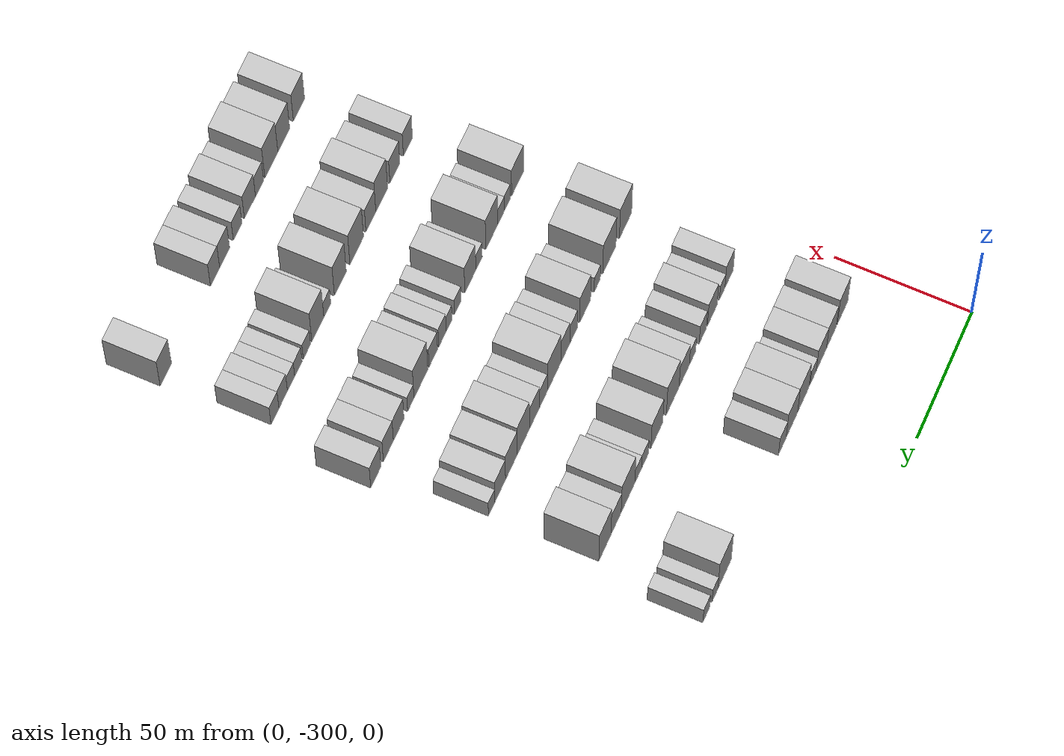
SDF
<sdf version="1.6">
 <world name="default">
  <model name="building_38">
   <static>1</static>
   <pose>50.0000 -282.1680 0 0.000000 0.000000 0.000000</pose>
   <link name="link">
    <pose>0 0 10.50 0 0 0</pose>
    <collision name="collision"><geometry><box><size>20.0000 9.3631 21.0000</size></box></geometry></collision>
    <visual name="visual">
     <cast_shadows>0</cast_shadows>
     <geometry><box><size>20.0000 9.3631 21.0000</size></box></geometry>
     <material>
      <script>
       <uri>model://HANNAS_wall/materials/scripts</uri>
       <uri>model://HANNAS_wall/materials/textures</uri>
       <name>vrc/HANNAS_wall</name>
      </script>
     </material>
    </visual>
   </link>
  </model>
  <model name="building_39">
   <static>1</static>
   <pose>50.0000 -272.1899 0 0.000000 0.000000 0.000000</pose>
   <link name="link">
    <pose>0 0 9.00 0 0 0</pose>
    <collision name="collision"><geometry><box><size>20.0000 8.5930 18.0000</size></box></geometry></collision>
    <visual name="visual">
     <cast_shadows>0</cast_shadows>
     <geometry><box><size>20.0000 8.5930 18.0000</size></box></geometry>
     <material>
      <script>
       <uri>model://HANNAS_wall/materials/scripts</uri>
       <uri>model://HANNAS_wall/materials/textures</uri>
       <name>vrc/HANNAS_wall</name>
      </script>
     </material>
    </visual>
   </link>
  </model>
  <model name="building_40">
   <static>1</static>
   <pose>50.0000 -263.4013 0 0.000000 0.000000 0.000000</pose>
   <link name="link">
    <pose>0 0 9.00 0 0 0</pose>
    <collision name="collision"><geometry><box><size>20.0000 8.9842 18.0000</size></box></geometry></collision>
    <visual name="visual">
     <cast_shadows>0</cast_shadows>
     <geometry><box><size>20.0000 8.9842 18.0000</size></box></geometry>
     <material>
      <script>
       <uri>model://HANNAS_wall/materials/scripts</uri>
       <uri>model://HANNAS_wall/materials/textures</uri>
       <name>vrc/HANNAS_wall</name>
      </script>
     </material>
    </visual>
   </link>
  </model>
  <model name="building_41">
   <static>1</static>
   <pose>50.0000 -256.2182 0 0.000000 0.000000 0.000000</pose>
   <link name="link">
    <pose>0 0 6.00 0 0 0</pose>
    <collision name="collision"><geometry><box><size>20.0000 5.3820 12.0000</size></box></geometry></collision>
    <visual name="visual">
     <cast_shadows>0</cast_shadows>
     <geometry><box><size>20.0000 5.3820 12.0000</size></box></geometry>
     <material>
      <script>
       <uri>model://HANNAS_wall/materials/scripts</uri>
       <uri>model://HANNAS_wall/materials/textures</uri>
       <name>vrc/HANNAS_wall</name>
      </script>
     </material>
    </visual>
   </link>
  </model>
  <model name="building_42">
   <static>1</static>
   <pose>50.0000 -247.5340 0 0.000000 0.000000 0.000000</pose>
   <link name="link">
    <pose>0 0 10.50 0 0 0</pose>
    <collision name="collision"><geometry><box><size>20.0000 9.9864 21.0000</size></box></geometry></collision>
    <visual name="visual">
     <cast_shadows>0</cast_shadows>
     <geometry><box><size>20.0000 9.9864 21.0000</size></box></geometry>
     <material>
      <script>
       <uri>model://HANNAS_wall/materials/scripts</uri>
       <uri>model://HANNAS_wall/materials/textures</uri>
       <name>vrc/HANNAS_wall</name>
      </script>
     </material>
    </visual>
   </link>
  </model>
  <model name="building_43">
   <static>1</static>
   <pose>50.0000 -237.5516 0 0.000000 0.000000 0.000000</pose>
   <link name="link">
    <pose>0 0 10.50 0 0 0</pose>
    <collision name="collision"><geometry><box><size>20.0000 9.9784 21.0000</size></box></geometry></collision>
    <visual name="visual">
     <cast_shadows>0</cast_shadows>
     <geometry><box><size>20.0000 9.9784 21.0000</size></box></geometry>
     <material>
      <script>
       <uri>model://HANNAS_wall/materials/scripts</uri>
       <uri>model://HANNAS_wall/materials/textures</uri>
       <name>vrc/HANNAS_wall</name>
      </script>
     </material>
    </visual>
   </link>
  </model>
  <model name="building_44">
   <static>1</static>
   <pose>50.0000 -229.1972 0 0.000000 0.000000 0.000000</pose>
   <link name="link">
    <pose>0 0 7.50 0 0 0</pose>
    <collision name="collision"><geometry><box><size>20.0000 6.7304 15.0000</size></box></geometry></collision>
    <visual name="visual">
     <cast_shadows>0</cast_shadows>
     <geometry><box><size>20.0000 6.7304 15.0000</size></box></geometry>
     <material>
      <script>
       <uri>model://HANNAS_wall/materials/scripts</uri>
       <uri>model://HANNAS_wall/materials/textures</uri>
       <name>vrc/HANNAS_wall</name>
      </script>
     </material>
    </visual>
   </link>
  </model>
  <model name="building_45">
   <static>1</static>
   <pose>50.0000 -179.5164 0 0.000000 0.000000 0.000000</pose>
   <link name="link">
    <pose>0 0 12.00 0 0 0</pose>
    <collision name="collision"><geometry><box><size>20.0000 11.5438 24.0000</size></box></geometry></collision>
    <visual name="visual">
     <cast_shadows>0</cast_shadows>
     <geometry><box><size>20.0000 11.5438 24.0000</size></box></geometry>
     <material>
      <script>
       <uri>model://HANNAS_wall/materials/scripts</uri>
       <uri>model://HANNAS_wall/materials/textures</uri>
       <name>vrc/HANNAS_wall</name>
      </script>
     </material>
    </visual>
   </link>
  </model>
  <model name="building_46">
   <static>1</static>
   <pose>50.0000 -171.2777 0 0.000000 0.000000 0.000000</pose>
   <link name="link">
    <pose>0 0 6.00 0 0 0</pose>
    <collision name="collision"><geometry><box><size>20.0000 4.9337 12.0000</size></box></geometry></collision>
    <visual name="visual">
     <cast_shadows>0</cast_shadows>
     <geometry><box><size>20.0000 4.9337 12.0000</size></box></geometry>
     <material>
      <script>
       <uri>model://HANNAS_wall/materials/scripts</uri>
       <uri>model://HANNAS_wall/materials/textures</uri>
       <name>vrc/HANNAS_wall</name>
      </script>
     </material>
    </visual>
   </link>
  </model>
  <model name="building_47">
   <static>1</static>
   <pose>50.0000 -163.9685 0 0.000000 0.000000 0.000000</pose>
   <link name="link">
    <pose>0 0 6.00 0 0 0</pose>
    <collision name="collision"><geometry><box><size>20.0000 5.6848 12.0000</size></box></geometry></collision>
    <visual name="visual">
     <cast_shadows>0</cast_shadows>
     <geometry><box><size>20.0000 5.6848 12.0000</size></box></geometry>
     <material>
      <script>
       <uri>model://HANNAS_wall/materials/scripts</uri>
       <uri>model://HANNAS_wall/materials/textures</uri>
       <name>vrc/HANNAS_wall</name>
      </script>
     </material>
    </visual>
   </link>
  </model>
  <model name="building_171">
   <static>1</static>
   <pose>90.0000 -278.3501 0 0.000000 0.000000 0.000000</pose>
   <link name="link">
    <pose>0 0 9.00 0 0 0</pose>
    <collision name="collision"><geometry><box><size>20.0000 7.2396 18.0000</size></box></geometry></collision>
    <visual name="visual">
     <cast_shadows>0</cast_shadows>
     <geometry><box><size>20.0000 7.2396 18.0000</size></box></geometry>
     <material>
      <script>
       <uri>model://HANNAS_wall/materials/scripts</uri>
       <uri>model://HANNAS_wall/materials/textures</uri>
       <name>vrc/HANNAS_wall</name>
      </script>
     </material>
    </visual>
   </link>
  </model>
  <model name="building_172">
   <static>1</static>
   <pose>90.0000 -272.3053 0 0.000000 0.000000 0.000000</pose>
   <link name="link">
    <pose>0 0 6.00 0 0 0</pose>
    <collision name="collision"><geometry><box><size>20.0000 4.8499 12.0000</size></box></geometry></collision>
    <visual name="visual">
     <cast_shadows>0</cast_shadows>
     <geometry><box><size>20.0000 4.8499 12.0000</size></box></geometry>
     <material>
      <script>
       <uri>model://HANNAS_wall/materials/scripts</uri>
       <uri>model://HANNAS_wall/materials/textures</uri>
       <name>vrc/HANNAS_wall</name>
      </script>
     </material>
    </visual>
   </link>
  </model>
  <model name="building_173">
   <static>1</static>
   <pose>90.0000 -263.7009 0 0.000000 0.000000 0.000000</pose>
   <link name="link">
    <pose>0 0 9.00 0 0 0</pose>
    <collision name="collision"><geometry><box><size>20.0000 8.3589 18.0000</size></box></geometry></collision>
    <visual name="visual">
     <cast_shadows>0</cast_shadows>
     <geometry><box><size>20.0000 8.3589 18.0000</size></box></geometry>
     <material>
      <script>
       <uri>model://HANNAS_wall/materials/scripts</uri>
       <uri>model://HANNAS_wall/materials/textures</uri>
       <name>vrc/HANNAS_wall</name>
      </script>
     </material>
    </visual>
   </link>
  </model>
  <model name="building_174">
   <static>1</static>
   <pose>90.0000 -255.4298 0 0.000000 0.000000 0.000000</pose>
   <link name="link">
    <pose>0 0 7.50 0 0 0</pose>
    <collision name="collision"><geometry><box><size>20.0000 6.1834 15.0000</size></box></geometry></collision>
    <visual name="visual">
     <cast_shadows>0</cast_shadows>
     <geometry><box><size>20.0000 6.1834 15.0000</size></box></geometry>
     <material>
      <script>
       <uri>model://HANNAS_wall/materials/scripts</uri>
       <uri>model://HANNAS_wall/materials/textures</uri>
       <name>vrc/HANNAS_wall</name>
      </script>
     </material>
    </visual>
   </link>
  </model>
  <model name="building_175">
   <static>1</static>
   <pose>90.0000 -246.6102 0 0.000000 0.000000 0.000000</pose>
   <link name="link">
    <pose>0 0 6.00 0 0 0</pose>
    <collision name="collision"><geometry><box><size>20.0000 5.4556 12.0000</size></box></geometry></collision>
    <visual name="visual">
     <cast_shadows>0</cast_shadows>
     <geometry><box><size>20.0000 5.4556 12.0000</size></box></geometry>
     <material>
      <script>
       <uri>model://HANNAS_wall/materials/scripts</uri>
       <uri>model://HANNAS_wall/materials/textures</uri>
       <name>vrc/HANNAS_wall</name>
      </script>
     </material>
    </visual>
   </link>
  </model>
  <model name="building_176">
   <static>1</static>
   <pose>90.0000 -239.4343 0 0.000000 0.000000 0.000000</pose>
   <link name="link">
    <pose>0 0 9.00 0 0 0</pose>
    <collision name="collision"><geometry><box><size>20.0000 8.8963 18.0000</size></box></geometry></collision>
    <visual name="visual">
     <cast_shadows>0</cast_shadows>
     <geometry><box><size>20.0000 8.8963 18.0000</size></box></geometry>
     <material>
      <script>
       <uri>model://HANNAS_wall/materials/scripts</uri>
       <uri>model://HANNAS_wall/materials/textures</uri>
       <name>vrc/HANNAS_wall</name>
      </script>
     </material>
    </visual>
   </link>
  </model>
  <model name="building_177">
   <static>1</static>
   <pose>90.0000 -229.5457 0 0.000000 0.000000 0.000000</pose>
   <link name="link">
    <pose>0 0 12.00 0 0 0</pose>
    <collision name="collision"><geometry><box><size>20.0000 10.8809 24.0000</size></box></geometry></collision>
    <visual name="visual">
     <cast_shadows>0</cast_shadows>
     <geometry><box><size>20.0000 10.8809 24.0000</size></box></geometry>
     <material>
      <script>
       <uri>model://HANNAS_wall/materials/scripts</uri>
       <uri>model://HANNAS_wall/materials/textures</uri>
       <name>vrc/HANNAS_wall</name>
      </script>
     </material>
    </visual>
   </link>
  </model>
  <model name="building_178">
   <static>1</static>
   <pose>90.0000 -216.0216 0 0.000000 0.000000 0.000000</pose>
   <link name="link">
    <pose>0 0 10.50 0 0 0</pose>
    <collision name="collision"><geometry><box><size>20.0000 10.1673 21.0000</size></box></geometry></collision>
    <visual name="visual">
     <cast_shadows>0</cast_shadows>
     <geometry><box><size>20.0000 10.1673 21.0000</size></box></geometry>
     <material>
      <script>
       <uri>model://HANNAS_wall/materials/scripts</uri>
       <uri>model://HANNAS_wall/materials/textures</uri>
       <name>vrc/HANNAS_wall</name>
      </script>
     </material>
    </visual>
   </link>
  </model>
  <model name="building_179">
   <static>1</static>
   <pose>90.0000 -206.0055 0 0.000000 0.000000 0.000000</pose>
   <link name="link">
    <pose>0 0 6.00 0 0 0</pose>
    <collision name="collision"><geometry><box><size>20.0000 5.8650 12.0000</size></box></geometry></collision>
    <visual name="visual">
     <cast_shadows>0</cast_shadows>
     <geometry><box><size>20.0000 5.8650 12.0000</size></box></geometry>
     <material>
      <script>
       <uri>model://HANNAS_wall/materials/scripts</uri>
       <uri>model://HANNAS_wall/materials/textures</uri>
       <name>vrc/HANNAS_wall</name>
      </script>
     </material>
    </visual>
   </link>
  </model>
  <model name="building_180">
   <static>1</static>
   <pose>90.0000 -200.2211 0 0.000000 0.000000 0.000000</pose>
   <link name="link">
    <pose>0 0 6.00 0 0 0</pose>
    <collision name="collision"><geometry><box><size>20.0000 5.7039 12.0000</size></box></geometry></collision>
    <visual name="visual">
     <cast_shadows>0</cast_shadows>
     <geometry><box><size>20.0000 5.7039 12.0000</size></box></geometry>
     <material>
      <script>
       <uri>model://HANNAS_wall/materials/scripts</uri>
       <uri>model://HANNAS_wall/materials/textures</uri>
       <name>vrc/HANNAS_wall</name>
      </script>
     </material>
    </visual>
   </link>
  </model>
  <model name="building_181">
   <static>1</static>
   <pose>90.0000 -191.6005 0 0.000000 0.000000 0.000000</pose>
   <link name="link">
    <pose>0 0 12.00 0 0 0</pose>
    <collision name="collision"><geometry><box><size>20.0000 11.5372 24.0000</size></box></geometry></collision>
    <visual name="visual">
     <cast_shadows>0</cast_shadows>
     <geometry><box><size>20.0000 11.5372 24.0000</size></box></geometry>
     <material>
      <script>
       <uri>model://HANNAS_wall/materials/scripts</uri>
       <uri>model://HANNAS_wall/materials/textures</uri>
       <name>vrc/HANNAS_wall</name>
      </script>
     </material>
    </visual>
   </link>
  </model>
  <model name="building_182">
   <static>1</static>
   <pose>90.0000 -181.5723 0 0.000000 0.000000 0.000000</pose>
   <link name="link">
    <pose>0 0 9.00 0 0 0</pose>
    <collision name="collision"><geometry><box><size>20.0000 8.5194 18.0000</size></box></geometry></collision>
    <visual name="visual">
     <cast_shadows>0</cast_shadows>
     <geometry><box><size>20.0000 8.5194 18.0000</size></box></geometry>
     <material>
      <script>
       <uri>model://HANNAS_wall/materials/scripts</uri>
       <uri>model://HANNAS_wall/materials/textures</uri>
       <name>vrc/HANNAS_wall</name>
      </script>
     </material>
    </visual>
   </link>
  </model>
  <model name="building_183">
   <static>1</static>
   <pose>90.0000 -172.2186 0 0.000000 0.000000 0.000000</pose>
   <link name="link">
    <pose>0 0 12.00 0 0 0</pose>
    <collision name="collision"><geometry><box><size>20.0000 10.1880 24.0000</size></box></geometry></collision>
    <visual name="visual">
     <cast_shadows>0</cast_shadows>
     <geometry><box><size>20.0000 10.1880 24.0000</size></box></geometry>
     <material>
      <script>
       <uri>model://HANNAS_wall/materials/scripts</uri>
       <uri>model://HANNAS_wall/materials/textures</uri>
       <name>vrc/HANNAS_wall</name>
      </script>
     </material>
    </visual>
   </link>
  </model>
  <model name="building_307">
   <static>1</static>
   <pose>130.0000 -282.4485 0 0.000000 0.000000 0.000000</pose>
   <link name="link">
    <pose>0 0 12.00 0 0 0</pose>
    <collision name="collision"><geometry><box><size>20.0000 10.4978 24.0000</size></box></geometry></collision>
    <visual name="visual">
     <cast_shadows>0</cast_shadows>
     <geometry><box><size>20.0000 10.4978 24.0000</size></box></geometry>
     <material>
      <script>
       <uri>model://HANNAS_wall/materials/scripts</uri>
       <uri>model://HANNAS_wall/materials/textures</uri>
       <name>vrc/HANNAS_wall</name>
      </script>
     </material>
    </visual>
   </link>
  </model>
  <model name="building_308">
   <static>1</static>
   <pose>130.0000 -268.5125 0 0.000000 0.000000 0.000000</pose>
   <link name="link">
    <pose>0 0 12.00 0 0 0</pose>
    <collision name="collision"><geometry><box><size>20.0000 11.3743 24.0000</size></box></geometry></collision>
    <visual name="visual">
     <cast_shadows>0</cast_shadows>
     <geometry><box><size>20.0000 11.3743 24.0000</size></box></geometry>
     <material>
      <script>
       <uri>model://HANNAS_wall/materials/scripts</uri>
       <uri>model://HANNAS_wall/materials/textures</uri>
       <name>vrc/HANNAS_wall</name>
      </script>
     </material>
    </visual>
   </link>
  </model>
  <model name="building_309">
   <static>1</static>
   <pose>130.0000 -258.1783 0 0.000000 0.000000 0.000000</pose>
   <link name="link">
    <pose>0 0 6.00 0 0 0</pose>
    <collision name="collision"><geometry><box><size>20.0000 5.2940 12.0000</size></box></geometry></collision>
    <visual name="visual">
     <cast_shadows>0</cast_shadows>
     <geometry><box><size>20.0000 5.2940 12.0000</size></box></geometry>
     <material>
      <script>
       <uri>model://HANNAS_wall/materials/scripts</uri>
       <uri>model://HANNAS_wall/materials/textures</uri>
       <name>vrc/HANNAS_wall</name>
      </script>
     </material>
    </visual>
   </link>
  </model>
  <model name="building_310">
   <static>1</static>
   <pose>130.0000 -247.9227 0 0.000000 0.000000 0.000000</pose>
   <link name="link">
    <pose>0 0 10.50 0 0 0</pose>
    <collision name="collision"><geometry><box><size>20.0000 9.2172 21.0000</size></box></geometry></collision>
    <visual name="visual">
     <cast_shadows>0</cast_shadows>
     <geometry><box><size>20.0000 9.2172 21.0000</size></box></geometry>
     <material>
      <script>
       <uri>model://HANNAS_wall/materials/scripts</uri>
       <uri>model://HANNAS_wall/materials/textures</uri>
       <name>vrc/HANNAS_wall</name>
      </script>
     </material>
    </visual>
   </link>
  </model>
  <model name="building_311">
   <static>1</static>
   <pose>130.0000 -238.0918 0 0.000000 0.000000 0.000000</pose>
   <link name="link">
    <pose>0 0 7.50 0 0 0</pose>
    <collision name="collision"><geometry><box><size>20.0000 6.4446 15.0000</size></box></geometry></collision>
    <visual name="visual">
     <cast_shadows>0</cast_shadows>
     <geometry><box><size>20.0000 6.4446 15.0000</size></box></geometry>
     <material>
      <script>
       <uri>model://HANNAS_wall/materials/scripts</uri>
       <uri>model://HANNAS_wall/materials/textures</uri>
       <name>vrc/HANNAS_wall</name>
      </script>
     </material>
    </visual>
   </link>
  </model>
  <model name="building_312">
   <static>1</static>
   <pose>130.0000 -231.1203 0 0.000000 0.000000 0.000000</pose>
   <link name="link">
    <pose>0 0 9.00 0 0 0</pose>
    <collision name="collision"><geometry><box><size>20.0000 7.4984 18.0000</size></box></geometry></collision>
    <visual name="visual">
     <cast_shadows>0</cast_shadows>
     <geometry><box><size>20.0000 7.4984 18.0000</size></box></geometry>
     <material>
      <script>
       <uri>model://HANNAS_wall/materials/scripts</uri>
       <uri>model://HANNAS_wall/materials/textures</uri>
       <name>vrc/HANNAS_wall</name>
      </script>
     </material>
    </visual>
   </link>
  </model>
  <model name="building_313">
   <static>1</static>
   <pose>130.0000 -221.6750 0 0.000000 0.000000 0.000000</pose>
   <link name="link">
    <pose>0 0 12.00 0 0 0</pose>
    <collision name="collision"><geometry><box><size>20.0000 11.3922 24.0000</size></box></geometry></collision>
    <visual name="visual">
     <cast_shadows>0</cast_shadows>
     <geometry><box><size>20.0000 11.3922 24.0000</size></box></geometry>
     <material>
      <script>
       <uri>model://HANNAS_wall/materials/scripts</uri>
       <uri>model://HANNAS_wall/materials/textures</uri>
       <name>vrc/HANNAS_wall</name>
      </script>
     </material>
    </visual>
   </link>
  </model>
  <model name="building_314">
   <static>1</static>
   <pose>130.0000 -212.7816 0 0.000000 0.000000 0.000000</pose>
   <link name="link">
    <pose>0 0 7.50 0 0 0</pose>
    <collision name="collision"><geometry><box><size>20.0000 6.3947 15.0000</size></box></geometry></collision>
    <visual name="visual">
     <cast_shadows>0</cast_shadows>
     <geometry><box><size>20.0000 6.3947 15.0000</size></box></geometry>
     <material>
      <script>
       <uri>model://HANNAS_wall/materials/scripts</uri>
       <uri>model://HANNAS_wall/materials/textures</uri>
       <name>vrc/HANNAS_wall</name>
      </script>
     </material>
    </visual>
   </link>
  </model>
  <model name="building_315">
   <static>1</static>
   <pose>130.0000 -205.3138 0 0.000000 0.000000 0.000000</pose>
   <link name="link">
    <pose>0 0 9.00 0 0 0</pose>
    <collision name="collision"><geometry><box><size>20.0000 8.5410 18.0000</size></box></geometry></collision>
    <visual name="visual">
     <cast_shadows>0</cast_shadows>
     <geometry><box><size>20.0000 8.5410 18.0000</size></box></geometry>
     <material>
      <script>
       <uri>model://HANNAS_wall/materials/scripts</uri>
       <uri>model://HANNAS_wall/materials/textures</uri>
       <name>vrc/HANNAS_wall</name>
      </script>
     </material>
    </visual>
   </link>
  </model>
  <model name="building_316">
   <static>1</static>
   <pose>130.0000 -196.0006 0 0.000000 0.000000 0.000000</pose>
   <link name="link">
    <pose>0 0 12.00 0 0 0</pose>
    <collision name="collision"><geometry><box><size>20.0000 10.0855 24.0000</size></box></geometry></collision>
    <visual name="visual">
     <cast_shadows>0</cast_shadows>
     <geometry><box><size>20.0000 10.0855 24.0000</size></box></geometry>
     <material>
      <script>
       <uri>model://HANNAS_wall/materials/scripts</uri>
       <uri>model://HANNAS_wall/materials/textures</uri>
       <name>vrc/HANNAS_wall</name>
      </script>
     </material>
    </visual>
   </link>
  </model>
  <model name="building_317">
   <static>1</static>
   <pose>130.0000 -186.0525 0 0.000000 0.000000 0.000000</pose>
   <link name="link">
    <pose>0 0 10.50 0 0 0</pose>
    <collision name="collision"><geometry><box><size>20.0000 9.8107 21.0000</size></box></geometry></collision>
    <visual name="visual">
     <cast_shadows>0</cast_shadows>
     <geometry><box><size>20.0000 9.8107 21.0000</size></box></geometry>
     <material>
      <script>
       <uri>model://HANNAS_wall/materials/scripts</uri>
       <uri>model://HANNAS_wall/materials/textures</uri>
       <name>vrc/HANNAS_wall</name>
      </script>
     </material>
    </visual>
   </link>
  </model>
  <model name="building_318">
   <static>1</static>
   <pose>130.0000 -176.7778 0 0.000000 0.000000 0.000000</pose>
   <link name="link">
    <pose>0 0 9.00 0 0 0</pose>
    <collision name="collision"><geometry><box><size>20.0000 8.7388 18.0000</size></box></geometry></collision>
    <visual name="visual">
     <cast_shadows>0</cast_shadows>
     <geometry><box><size>20.0000 8.7388 18.0000</size></box></geometry>
     <material>
      <script>
       <uri>model://HANNAS_wall/materials/scripts</uri>
       <uri>model://HANNAS_wall/materials/textures</uri>
       <name>vrc/HANNAS_wall</name>
      </script>
     </material>
    </visual>
   </link>
  </model>
  <model name="building_319">
   <static>1</static>
   <pose>130.0000 -169.7371 0 0.000000 0.000000 0.000000</pose>
   <link name="link">
    <pose>0 0 6.00 0 0 0</pose>
    <collision name="collision"><geometry><box><size>20.0000 5.3426 12.0000</size></box></geometry></collision>
    <visual name="visual">
     <cast_shadows>0</cast_shadows>
     <geometry><box><size>20.0000 5.3426 12.0000</size></box></geometry>
     <material>
      <script>
       <uri>model://HANNAS_wall/materials/scripts</uri>
       <uri>model://HANNAS_wall/materials/textures</uri>
       <name>vrc/HANNAS_wall</name>
      </script>
     </material>
    </visual>
   </link>
  </model>
  <model name="building_441">
   <static>1</static>
   <pose>170.0000 -282.1129 0 0.000000 0.000000 0.000000</pose>
   <link name="link">
    <pose>0 0 10.50 0 0 0</pose>
    <collision name="collision"><geometry><box><size>20.0000 10.3343 21.0000</size></box></geometry></collision>
    <visual name="visual">
     <cast_shadows>0</cast_shadows>
     <geometry><box><size>20.0000 10.3343 21.0000</size></box></geometry>
     <material>
      <script>
       <uri>model://HANNAS_wall/materials/scripts</uri>
       <uri>model://HANNAS_wall/materials/textures</uri>
       <name>vrc/HANNAS_wall</name>
      </script>
     </material>
    </visual>
   </link>
  </model>
  <model name="building_442">
   <static>1</static>
   <pose>170.0000 -273.4172 0 0.000000 0.000000 0.000000</pose>
   <link name="link">
    <pose>0 0 6.00 0 0 0</pose>
    <collision name="collision"><geometry><box><size>20.0000 5.0572 12.0000</size></box></geometry></collision>
    <visual name="visual">
     <cast_shadows>0</cast_shadows>
     <geometry><box><size>20.0000 5.0572 12.0000</size></box></geometry>
     <material>
      <script>
       <uri>model://HANNAS_wall/materials/scripts</uri>
       <uri>model://HANNAS_wall/materials/textures</uri>
       <name>vrc/HANNAS_wall</name>
      </script>
     </material>
    </visual>
   </link>
  </model>
  <model name="building_443">
   <static>1</static>
   <pose>170.0000 -268.1525 0 0.000000 0.000000 0.000000</pose>
   <link name="link">
    <pose>0 0 6.00 0 0 0</pose>
    <collision name="collision"><geometry><box><size>20.0000 5.4723 12.0000</size></box></geometry></collision>
    <visual name="visual">
     <cast_shadows>0</cast_shadows>
     <geometry><box><size>20.0000 5.4723 12.0000</size></box></geometry>
     <material>
      <script>
       <uri>model://HANNAS_wall/materials/scripts</uri>
       <uri>model://HANNAS_wall/materials/textures</uri>
       <name>vrc/HANNAS_wall</name>
      </script>
     </material>
    </visual>
   </link>
  </model>
  <model name="building_444">
   <static>1</static>
   <pose>170.0000 -260.3412 0 0.000000 0.000000 0.000000</pose>
   <link name="link">
    <pose>0 0 12.00 0 0 0</pose>
    <collision name="collision"><geometry><box><size>20.0000 10.1502 24.0000</size></box></geometry></collision>
    <visual name="visual">
     <cast_shadows>0</cast_shadows>
     <geometry><box><size>20.0000 10.1502 24.0000</size></box></geometry>
     <material>
      <script>
       <uri>model://HANNAS_wall/materials/scripts</uri>
       <uri>model://HANNAS_wall/materials/textures</uri>
       <name>vrc/HANNAS_wall</name>
      </script>
     </material>
    </visual>
   </link>
  </model>
  <model name="building_445">
   <static>1</static>
   <pose>170.0000 -249.5956 0 0.000000 0.000000 0.000000</pose>
   <link name="link">
    <pose>0 0 6.00 0 0 0</pose>
    <collision name="collision"><geometry><box><size>20.0000 5.3410 12.0000</size></box></geometry></collision>
    <visual name="visual">
     <cast_shadows>0</cast_shadows>
     <geometry><box><size>20.0000 5.3410 12.0000</size></box></geometry>
     <material>
      <script>
       <uri>model://HANNAS_wall/materials/scripts</uri>
       <uri>model://HANNAS_wall/materials/textures</uri>
       <name>vrc/HANNAS_wall</name>
      </script>
     </material>
    </visual>
   </link>
  </model>
  <model name="building_446">
   <static>1</static>
   <pose>170.0000 -242.3098 0 0.000000 0.000000 0.000000</pose>
   <link name="link">
    <pose>0 0 10.50 0 0 0</pose>
    <collision name="collision"><geometry><box><size>20.0000 9.2308 21.0000</size></box></geometry></collision>
    <visual name="visual">
     <cast_shadows>0</cast_shadows>
     <geometry><box><size>20.0000 9.2308 21.0000</size></box></geometry>
     <material>
      <script>
       <uri>model://HANNAS_wall/materials/scripts</uri>
       <uri>model://HANNAS_wall/materials/textures</uri>
       <name>vrc/HANNAS_wall</name>
      </script>
     </material>
    </visual>
   </link>
  </model>
  <model name="building_447">
   <static>1</static>
   <pose>170.0000 -231.8755 0 0.000000 0.000000 0.000000</pose>
   <link name="link">
    <pose>0 0 6.00 0 0 0</pose>
    <collision name="collision"><geometry><box><size>20.0000 5.6378 12.0000</size></box></geometry></collision>
    <visual name="visual">
     <cast_shadows>0</cast_shadows>
     <geometry><box><size>20.0000 5.6378 12.0000</size></box></geometry>
     <material>
      <script>
       <uri>model://HANNAS_wall/materials/scripts</uri>
       <uri>model://HANNAS_wall/materials/textures</uri>
       <name>vrc/HANNAS_wall</name>
      </script>
     </material>
    </visual>
   </link>
  </model>
  <model name="building_448">
   <static>1</static>
   <pose>170.0000 -224.6521 0 0.000000 0.000000 0.000000</pose>
   <link name="link">
    <pose>0 0 6.00 0 0 0</pose>
    <collision name="collision"><geometry><box><size>20.0000 4.8091 12.0000</size></box></geometry></collision>
    <visual name="visual">
     <cast_shadows>0</cast_shadows>
     <geometry><box><size>20.0000 4.8091 12.0000</size></box></geometry>
     <material>
      <script>
       <uri>model://HANNAS_wall/materials/scripts</uri>
       <uri>model://HANNAS_wall/materials/textures</uri>
       <name>vrc/HANNAS_wall</name>
      </script>
     </material>
    </visual>
   </link>
  </model>
  <model name="building_449">
   <static>1</static>
   <pose>170.0000 -219.1649 0 0.000000 0.000000 0.000000</pose>
   <link name="link">
    <pose>0 0 7.50 0 0 0</pose>
    <collision name="collision"><geometry><box><size>20.0000 6.1652 15.0000</size></box></geometry></collision>
    <visual name="visual">
     <cast_shadows>0</cast_shadows>
     <geometry><box><size>20.0000 6.1652 15.0000</size></box></geometry>
     <material>
      <script>
       <uri>model://HANNAS_wall/materials/scripts</uri>
       <uri>model://HANNAS_wall/materials/textures</uri>
       <name>vrc/HANNAS_wall</name>
      </script>
     </material>
    </visual>
   </link>
  </model>
  <model name="building_450">
   <static>1</static>
   <pose>170.0000 -211.5682 0 0.000000 0.000000 0.000000</pose>
   <link name="link">
    <pose>0 0 7.50 0 0 0</pose>
    <collision name="collision"><geometry><box><size>20.0000 7.0281 15.0000</size></box></geometry></collision>
    <visual name="visual">
     <cast_shadows>0</cast_shadows>
     <geometry><box><size>20.0000 7.0281 15.0000</size></box></geometry>
     <material>
      <script>
       <uri>model://HANNAS_wall/materials/scripts</uri>
       <uri>model://HANNAS_wall/materials/textures</uri>
       <name>vrc/HANNAS_wall</name>
      </script>
     </material>
    </visual>
   </link>
  </model>
  <model name="building_451">
   <static>1</static>
   <pose>170.0000 -201.3677 0 0.000000 0.000000 0.000000</pose>
   <link name="link">
    <pose>0 0 12.00 0 0 0</pose>
    <collision name="collision"><geometry><box><size>20.0000 11.3728 24.0000</size></box></geometry></collision>
    <visual name="visual">
     <cast_shadows>0</cast_shadows>
     <geometry><box><size>20.0000 11.3728 24.0000</size></box></geometry>
     <material>
      <script>
       <uri>model://HANNAS_wall/materials/scripts</uri>
       <uri>model://HANNAS_wall/materials/textures</uri>
       <name>vrc/HANNAS_wall</name>
      </script>
     </material>
    </visual>
   </link>
  </model>
  <model name="building_452">
   <static>1</static>
   <pose>170.0000 -193.0962 0 0.000000 0.000000 0.000000</pose>
   <link name="link">
    <pose>0 0 6.00 0 0 0</pose>
    <collision name="collision"><geometry><box><size>20.0000 5.1702 12.0000</size></box></geometry></collision>
    <visual name="visual">
     <cast_shadows>0</cast_shadows>
     <geometry><box><size>20.0000 5.1702 12.0000</size></box></geometry>
     <material>
      <script>
       <uri>model://HANNAS_wall/materials/scripts</uri>
       <uri>model://HANNAS_wall/materials/textures</uri>
       <name>vrc/HANNAS_wall</name>
      </script>
     </material>
    </visual>
   </link>
  </model>
  <model name="building_453">
   <static>1</static>
   <pose>170.0000 -183.1927 0 0.000000 0.000000 0.000000</pose>
   <link name="link">
    <pose>0 0 9.00 0 0 0</pose>
    <collision name="collision"><geometry><box><size>20.0000 8.6368 18.0000</size></box></geometry></collision>
    <visual name="visual">
     <cast_shadows>0</cast_shadows>
     <geometry><box><size>20.0000 8.6368 18.0000</size></box></geometry>
     <material>
      <script>
       <uri>model://HANNAS_wall/materials/scripts</uri>
       <uri>model://HANNAS_wall/materials/textures</uri>
       <name>vrc/HANNAS_wall</name>
      </script>
     </material>
    </visual>
   </link>
  </model>
  <model name="building_454">
   <static>1</static>
   <pose>170.0000 -174.8066 0 0.000000 0.000000 0.000000</pose>
   <link name="link">
    <pose>0 0 9.00 0 0 0</pose>
    <collision name="collision"><geometry><box><size>20.0000 8.1354 18.0000</size></box></geometry></collision>
    <visual name="visual">
     <cast_shadows>0</cast_shadows>
     <geometry><box><size>20.0000 8.1354 18.0000</size></box></geometry>
     <material>
      <script>
       <uri>model://HANNAS_wall/materials/scripts</uri>
       <uri>model://HANNAS_wall/materials/textures</uri>
       <name>vrc/HANNAS_wall</name>
      </script>
     </material>
    </visual>
   </link>
  </model>
  <model name="building_455">
   <static>1</static>
   <pose>170.0000 -164.6260 0 0.000000 0.000000 0.000000</pose>
   <link name="link">
    <pose>0 0 9.00 0 0 0</pose>
    <collision name="collision"><geometry><box><size>20.0000 8.2258 18.0000</size></box></geometry></collision>
    <visual name="visual">
     <cast_shadows>0</cast_shadows>
     <geometry><box><size>20.0000 8.2258 18.0000</size></box></geometry>
     <material>
      <script>
       <uri>model://HANNAS_wall/materials/scripts</uri>
       <uri>model://HANNAS_wall/materials/textures</uri>
       <name>vrc/HANNAS_wall</name>
      </script>
     </material>
    </visual>
   </link>
  </model>
  <model name="building_582">
   <static>1</static>
   <pose>210.0000 -279.6282 0 0.000000 0.000000 0.000000</pose>
   <link name="link">
    <pose>0 0 9.00 0 0 0</pose>
    <collision name="collision"><geometry><box><size>20.0000 7.5351 18.0000</size></box></geometry></collision>
    <visual name="visual">
     <cast_shadows>0</cast_shadows>
     <geometry><box><size>20.0000 7.5351 18.0000</size></box></geometry>
     <material>
      <script>
       <uri>model://HANNAS_wall/materials/scripts</uri>
       <uri>model://HANNAS_wall/materials/textures</uri>
       <name>vrc/HANNAS_wall</name>
      </script>
     </material>
    </visual>
   </link>
  </model>
  <model name="building_583">
   <static>1</static>
   <pose>210.0000 -268.7681 0 0.000000 0.000000 0.000000</pose>
   <link name="link">
    <pose>0 0 9.00 0 0 0</pose>
    <collision name="collision"><geometry><box><size>20.0000 8.1851 18.0000</size></box></geometry></collision>
    <visual name="visual">
     <cast_shadows>0</cast_shadows>
     <geometry><box><size>20.0000 8.1851 18.0000</size></box></geometry>
     <material>
      <script>
       <uri>model://HANNAS_wall/materials/scripts</uri>
       <uri>model://HANNAS_wall/materials/textures</uri>
       <name>vrc/HANNAS_wall</name>
      </script>
     </material>
    </visual>
   </link>
  </model>
  <model name="building_584">
   <static>1</static>
   <pose>210.0000 -257.8180 0 0.000000 0.000000 0.000000</pose>
   <link name="link">
    <pose>0 0 12.00 0 0 0</pose>
    <collision name="collision"><geometry><box><size>20.0000 9.7149 24.0000</size></box></geometry></collision>
    <visual name="visual">
     <cast_shadows>0</cast_shadows>
     <geometry><box><size>20.0000 9.7149 24.0000</size></box></geometry>
     <material>
      <script>
       <uri>model://HANNAS_wall/materials/scripts</uri>
       <uri>model://HANNAS_wall/materials/textures</uri>
       <name>vrc/HANNAS_wall</name>
      </script>
     </material>
    </visual>
   </link>
  </model>
  <model name="building_585">
   <static>1</static>
   <pose>210.0000 -248.9020 0 0.000000 0.000000 0.000000</pose>
   <link name="link">
    <pose>0 0 9.00 0 0 0</pose>
    <collision name="collision"><geometry><box><size>20.0000 8.1172 18.0000</size></box></geometry></collision>
    <visual name="visual">
     <cast_shadows>0</cast_shadows>
     <geometry><box><size>20.0000 8.1172 18.0000</size></box></geometry>
     <material>
      <script>
       <uri>model://HANNAS_wall/materials/scripts</uri>
       <uri>model://HANNAS_wall/materials/textures</uri>
       <name>vrc/HANNAS_wall</name>
      </script>
     </material>
    </visual>
   </link>
  </model>
  <model name="building_586">
   <static>1</static>
   <pose>210.0000 -237.2654 0 0.000000 0.000000 0.000000</pose>
   <link name="link">
    <pose>0 0 12.00 0 0 0</pose>
    <collision name="collision"><geometry><box><size>20.0000 11.1560 24.0000</size></box></geometry></collision>
    <visual name="visual">
     <cast_shadows>0</cast_shadows>
     <geometry><box><size>20.0000 11.1560 24.0000</size></box></geometry>
     <material>
      <script>
       <uri>model://HANNAS_wall/materials/scripts</uri>
       <uri>model://HANNAS_wall/materials/textures</uri>
       <name>vrc/HANNAS_wall</name>
      </script>
     </material>
    </visual>
   </link>
  </model>
  <model name="building_587">
   <static>1</static>
   <pose>210.0000 -223.8576 0 0.000000 0.000000 0.000000</pose>
   <link name="link">
    <pose>0 0 12.00 0 0 0</pose>
    <collision name="collision"><geometry><box><size>20.0000 9.6596 24.0000</size></box></geometry></collision>
    <visual name="visual">
     <cast_shadows>0</cast_shadows>
     <geometry><box><size>20.0000 9.6596 24.0000</size></box></geometry>
     <material>
      <script>
       <uri>model://HANNAS_wall/materials/scripts</uri>
       <uri>model://HANNAS_wall/materials/textures</uri>
       <name>vrc/HANNAS_wall</name>
      </script>
     </material>
    </visual>
   </link>
  </model>
  <model name="building_588">
   <static>1</static>
   <pose>210.0000 -213.2105 0 0.000000 0.000000 0.000000</pose>
   <link name="link">
    <pose>0 0 6.00 0 0 0</pose>
    <collision name="collision"><geometry><box><size>20.0000 5.6346 12.0000</size></box></geometry></collision>
    <visual name="visual">
     <cast_shadows>0</cast_shadows>
     <geometry><box><size>20.0000 5.6346 12.0000</size></box></geometry>
     <material>
      <script>
       <uri>model://HANNAS_wall/materials/scripts</uri>
       <uri>model://HANNAS_wall/materials/textures</uri>
       <name>vrc/HANNAS_wall</name>
      </script>
     </material>
    </visual>
   </link>
  </model>
  <model name="building_589">
   <static>1</static>
   <pose>210.0000 -205.5227 0 0.000000 0.000000 0.000000</pose>
   <link name="link">
    <pose>0 0 12.00 0 0 0</pose>
    <collision name="collision"><geometry><box><size>20.0000 9.7410 24.0000</size></box></geometry></collision>
    <visual name="visual">
     <cast_shadows>0</cast_shadows>
     <geometry><box><size>20.0000 9.7410 24.0000</size></box></geometry>
     <material>
      <script>
       <uri>model://HANNAS_wall/materials/scripts</uri>
       <uri>model://HANNAS_wall/materials/textures</uri>
       <name>vrc/HANNAS_wall</name>
      </script>
     </material>
    </visual>
   </link>
  </model>
  <model name="building_590">
   <static>1</static>
   <pose>210.0000 -196.6884 0 0.000000 0.000000 0.000000</pose>
   <link name="link">
    <pose>0 0 6.00 0 0 0</pose>
    <collision name="collision"><geometry><box><size>20.0000 5.9276 12.0000</size></box></geometry></collision>
    <visual name="visual">
     <cast_shadows>0</cast_shadows>
     <geometry><box><size>20.0000 5.9276 12.0000</size></box></geometry>
     <material>
      <script>
       <uri>model://HANNAS_wall/materials/scripts</uri>
       <uri>model://HANNAS_wall/materials/textures</uri>
       <name>vrc/HANNAS_wall</name>
      </script>
     </material>
    </visual>
   </link>
  </model>
  <model name="building_591">
   <static>1</static>
   <pose>210.0000 -189.7746 0 0.000000 0.000000 0.000000</pose>
   <link name="link">
    <pose>0 0 6.00 0 0 0</pose>
    <collision name="collision"><geometry><box><size>20.0000 5.9000 12.0000</size></box></geometry></collision>
    <visual name="visual">
     <cast_shadows>0</cast_shadows>
     <geometry><box><size>20.0000 5.9000 12.0000</size></box></geometry>
     <material>
      <script>
       <uri>model://HANNAS_wall/materials/scripts</uri>
       <uri>model://HANNAS_wall/materials/textures</uri>
       <name>vrc/HANNAS_wall</name>
      </script>
     </material>
    </visual>
   </link>
  </model>
  <model name="building_592">
   <static>1</static>
   <pose>210.0000 -183.8991 0 0.000000 0.000000 0.000000</pose>
   <link name="link">
    <pose>0 0 6.00 0 0 0</pose>
    <collision name="collision"><geometry><box><size>20.0000 5.8510 12.0000</size></box></geometry></collision>
    <visual name="visual">
     <cast_shadows>0</cast_shadows>
     <geometry><box><size>20.0000 5.8510 12.0000</size></box></geometry>
     <material>
      <script>
       <uri>model://HANNAS_wall/materials/scripts</uri>
       <uri>model://HANNAS_wall/materials/textures</uri>
       <name>vrc/HANNAS_wall</name>
      </script>
     </material>
    </visual>
   </link>
  </model>
  <model name="building_593">
   <static>1</static>
   <pose>210.0000 -177.5646 0 0.000000 0.000000 0.000000</pose>
   <link name="link">
    <pose>0 0 7.50 0 0 0</pose>
    <collision name="collision"><geometry><box><size>20.0000 6.8181 15.0000</size></box></geometry></collision>
    <visual name="visual">
     <cast_shadows>0</cast_shadows>
     <geometry><box><size>20.0000 6.8181 15.0000</size></box></geometry>
     <material>
      <script>
       <uri>model://HANNAS_wall/materials/scripts</uri>
       <uri>model://HANNAS_wall/materials/textures</uri>
       <name>vrc/HANNAS_wall</name>
      </script>
     </material>
    </visual>
   </link>
  </model>
  <model name="building_594">
   <static>1</static>
   <pose>210.0000 -170.9834 0 0.000000 0.000000 0.000000</pose>
   <link name="link">
    <pose>0 0 7.50 0 0 0</pose>
    <collision name="collision"><geometry><box><size>20.0000 6.3442 15.0000</size></box></geometry></collision>
    <visual name="visual">
     <cast_shadows>0</cast_shadows>
     <geometry><box><size>20.0000 6.3442 15.0000</size></box></geometry>
     <material>
      <script>
       <uri>model://HANNAS_wall/materials/scripts</uri>
       <uri>model://HANNAS_wall/materials/textures</uri>
       <name>vrc/HANNAS_wall</name>
      </script>
     </material>
    </visual>
   </link>
  </model>
  <model name="building_721">
   <static>1</static>
   <pose>250.0000 -277.3032 0 0.000000 0.000000 0.000000</pose>
   <link name="link">
    <pose>0 0 10.50 0 0 0</pose>
    <collision name="collision"><geometry><box><size>20.0000 9.2249 21.0000</size></box></geometry></collision>
    <visual name="visual">
     <cast_shadows>0</cast_shadows>
     <geometry><box><size>20.0000 9.2249 21.0000</size></box></geometry>
     <material>
      <script>
       <uri>model://HANNAS_wall/materials/scripts</uri>
       <uri>model://HANNAS_wall/materials/textures</uri>
       <name>vrc/HANNAS_wall</name>
      </script>
     </material>
    </visual>
   </link>
  </model>
  <model name="building_722">
   <static>1</static>
   <pose>250.0000 -264.8292 0 0.000000 0.000000 0.000000</pose>
   <link name="link">
    <pose>0 0 10.50 0 0 0</pose>
    <collision name="collision"><geometry><box><size>20.0000 9.7231 21.0000</size></box></geometry></collision>
    <visual name="visual">
     <cast_shadows>0</cast_shadows>
     <geometry><box><size>20.0000 9.7231 21.0000</size></box></geometry>
     <material>
      <script>
       <uri>model://HANNAS_wall/materials/scripts</uri>
       <uri>model://HANNAS_wall/materials/textures</uri>
       <name>vrc/HANNAS_wall</name>
      </script>
     </material>
    </visual>
   </link>
  </model>
  <model name="building_723">
   <static>1</static>
   <pose>250.0000 -254.6533 0 0.000000 0.000000 0.000000</pose>
   <link name="link">
    <pose>0 0 12.00 0 0 0</pose>
    <collision name="collision"><geometry><box><size>20.0000 10.6287 24.0000</size></box></geometry></collision>
    <visual name="visual">
     <cast_shadows>0</cast_shadows>
     <geometry><box><size>20.0000 10.6287 24.0000</size></box></geometry>
     <material>
      <script>
       <uri>model://HANNAS_wall/materials/scripts</uri>
       <uri>model://HANNAS_wall/materials/textures</uri>
       <name>vrc/HANNAS_wall</name>
      </script>
     </material>
    </visual>
   </link>
  </model>
  <model name="building_724">
   <static>1</static>
   <pose>250.0000 -245.0492 0 0.000000 0.000000 0.000000</pose>
   <link name="link">
    <pose>0 0 7.50 0 0 0</pose>
    <collision name="collision"><geometry><box><size>20.0000 6.5797 15.0000</size></box></geometry></collision>
    <visual name="visual">
     <cast_shadows>0</cast_shadows>
     <geometry><box><size>20.0000 6.5797 15.0000</size></box></geometry>
     <material>
      <script>
       <uri>model://HANNAS_wall/materials/scripts</uri>
       <uri>model://HANNAS_wall/materials/textures</uri>
       <name>vrc/HANNAS_wall</name>
      </script>
     </material>
    </visual>
   </link>
  </model>
  <model name="building_725">
   <static>1</static>
   <pose>250.0000 -237.2723 0 0.000000 0.000000 0.000000</pose>
   <link name="link">
    <pose>0 0 9.00 0 0 0</pose>
    <collision name="collision"><geometry><box><size>20.0000 8.9740 18.0000</size></box></geometry></collision>
    <visual name="visual">
     <cast_shadows>0</cast_shadows>
     <geometry><box><size>20.0000 8.9740 18.0000</size></box></geometry>
     <material>
      <script>
       <uri>model://HANNAS_wall/materials/scripts</uri>
       <uri>model://HANNAS_wall/materials/textures</uri>
       <name>vrc/HANNAS_wall</name>
      </script>
     </material>
    </visual>
   </link>
  </model>
  <model name="building_726">
   <static>1</static>
   <pose>250.0000 -227.3323 0 0.000000 0.000000 0.000000</pose>
   <link name="link">
    <pose>0 0 7.50 0 0 0</pose>
    <collision name="collision"><geometry><box><size>20.0000 6.9061 15.0000</size></box></geometry></collision>
    <visual name="visual">
     <cast_shadows>0</cast_shadows>
     <geometry><box><size>20.0000 6.9061 15.0000</size></box></geometry>
     <material>
      <script>
       <uri>model://HANNAS_wall/materials/scripts</uri>
       <uri>model://HANNAS_wall/materials/textures</uri>
       <name>vrc/HANNAS_wall</name>
      </script>
     </material>
    </visual>
   </link>
  </model>
  <model name="building_727">
   <static>1</static>
   <pose>250.0000 -216.8804 0 0.000000 0.000000 0.000000</pose>
   <link name="link">
    <pose>0 0 9.00 0 0 0</pose>
    <collision name="collision"><geometry><box><size>20.0000 7.9977 18.0000</size></box></geometry></collision>
    <visual name="visual">
     <cast_shadows>0</cast_shadows>
     <geometry><box><size>20.0000 7.9977 18.0000</size></box></geometry>
     <material>
      <script>
       <uri>model://HANNAS_wall/materials/scripts</uri>
       <uri>model://HANNAS_wall/materials/textures</uri>
       <name>vrc/HANNAS_wall</name>
      </script>
     </material>
    </visual>
   </link>
  </model>
  <model name="building_728">
   <static>1</static>
   <pose>250.0000 -209.1794 0 0.000000 0.000000 0.000000</pose>
   <link name="link">
    <pose>0 0 9.00 0 0 0</pose>
    <collision name="collision"><geometry><box><size>20.0000 7.4044 18.0000</size></box></geometry></collision>
    <visual name="visual">
     <cast_shadows>0</cast_shadows>
     <geometry><box><size>20.0000 7.4044 18.0000</size></box></geometry>
     <material>
      <script>
       <uri>model://HANNAS_wall/materials/scripts</uri>
       <uri>model://HANNAS_wall/materials/textures</uri>
       <name>vrc/HANNAS_wall</name>
      </script>
     </material>
    </visual>
   </link>
  </model>
  <model name="building_729">
   <static>1</static>
   <pose>250.0000 -170.0259 0 0.000000 0.000000 0.000000</pose>
   <link name="link">
    <pose>0 0 10.50 0 0 0</pose>
    <collision name="collision"><geometry><box><size>20.0000 8.9676 21.0000</size></box></geometry></collision>
    <visual name="visual">
     <cast_shadows>0</cast_shadows>
     <geometry><box><size>20.0000 8.9676 21.0000</size></box></geometry>
     <material>
      <script>
       <uri>model://HANNAS_wall/materials/scripts</uri>
       <uri>model://HANNAS_wall/materials/textures</uri>
       <name>vrc/HANNAS_wall</name>
      </script>
     </material>
    </visual>
   </link>
  </model>
 </world>
</sdf>
